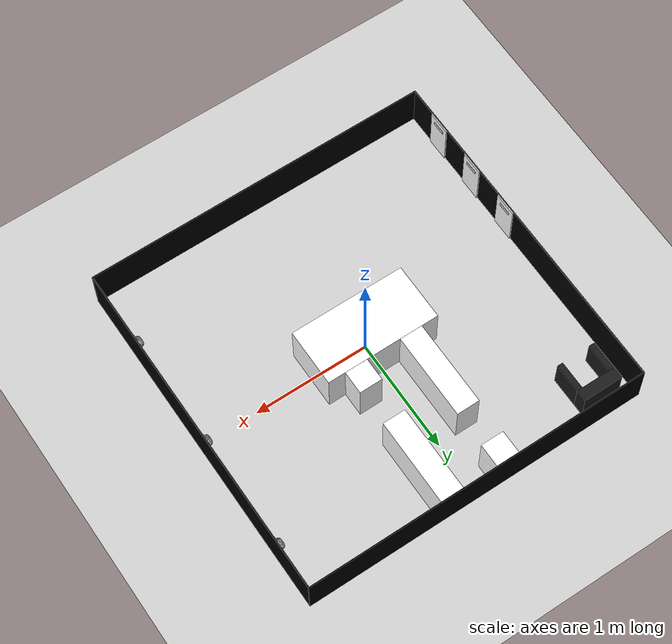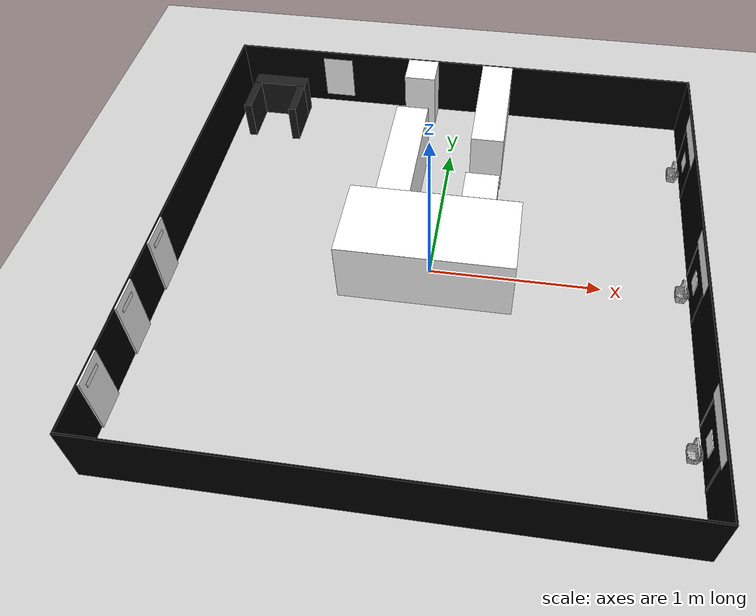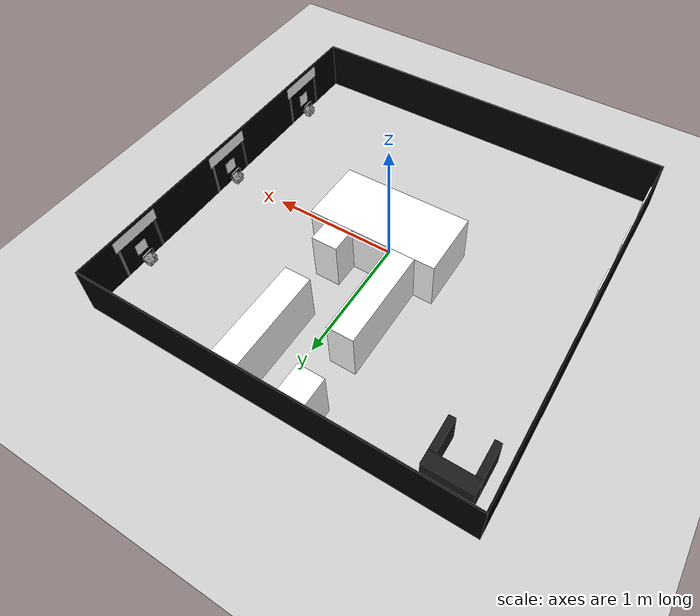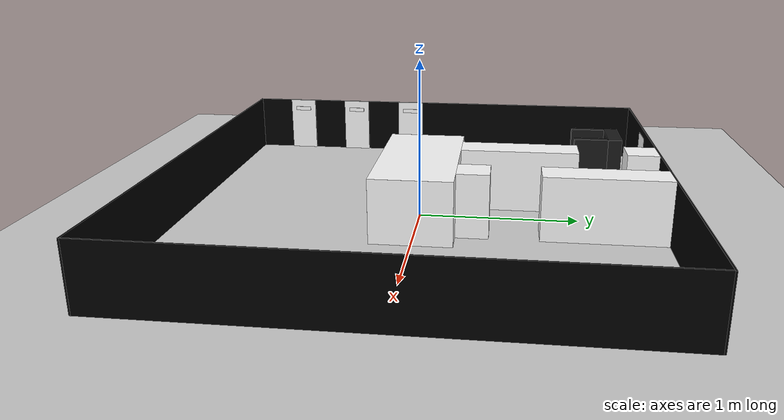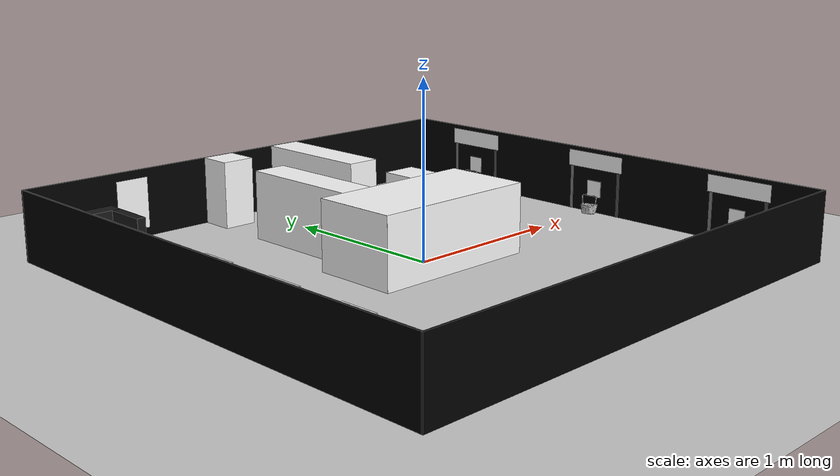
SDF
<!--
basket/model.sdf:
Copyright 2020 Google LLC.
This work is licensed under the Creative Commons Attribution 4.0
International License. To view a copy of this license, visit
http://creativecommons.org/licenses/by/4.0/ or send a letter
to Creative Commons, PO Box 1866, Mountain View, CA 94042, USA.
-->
<sdf version="1.8">
 <world name="default">
  <plugin filename="gz-sim-physics-system" name="gz::sim::systems::Physics"/>
  <plugin filename="gz-sim-user-commands-system" name="gz::sim::systems::UserCommands"/>
  <plugin filename="gz-sim-scene-broadcaster-system" name="gz::sim::systems::SceneBroadcaster"/>
  <plugin filename="gz-sim-sensors-system" name="gz::sim::systems::Sensors">
   <render_engine>ogre2</render_engine>
  </plugin>
  <plugin filename="gz-sim-imu-system" name="gz::sim::systems::Imu"/>
  <scene>
   <ambient>1 1 1 1</ambient>
   <shadows>0</shadows>
   <grid>1</grid>
   <background>0.7 0.7 0.7 1</background>
  </scene>
  <light type="directional" name="sun">
   <cast_shadows>0</cast_shadows>
   <pose>0 0 5 0 0 0</pose>
   <diffuse>0.9 0.9 0.9 1</diffuse>
   <specular>0.2 0.2 0.2 1</specular>
   <attenuation>
    <range>1000</range>
    <constant>0.9</constant>
    <linear>0.01</linear>
    <quadratic>0.001</quadratic>
   </attenuation>
   <direction>0.5 0.1 -0.9</direction>
  </light>
  <model name="turtlebot3_autorace_2025">
   <static>1</static>
   <include><uri>model://turtlebot3_autorace_2025/stadium</uri></include>
  </model>
  <include><uri>model://turtlebot3_autorace_2025/ground</uri></include>
  <include><pose>0 0.75 0 0 0 0</pose><uri>model://turtlebot3_autorace_2025/wall</uri></include>
  <include><pose>-1.225 1.225 0 0 0 0</pose><uri>model://turtlebot3_autorace_2025/charge_station</uri></include>
  <include><pose>1.5 0 0 0 0 0</pose><uri>model://turtlebot3_autorace_2025/pickup_desk</uri></include>
  <include><pose>-1.3 -1.5 0 0 0 0</pose><uri>model://turtlebot3_autorace_2025/place_zone</uri></include>
  <include><pose>-0.85 1.5 0 0 0 0</pose><uri>model://turtlebot3_autorace_2025/order_panel</uri></include>
  <model name="basket1">
   <include><pose>1.45 -1 0 0 0 1.57</pose><uri>model://turtlebot3_autorace_2025/basket</uri></include>
  </model>
  <model name="basket2">
   <include><pose>1.45 0 0 0 0 1.57</pose><uri>model://turtlebot3_autorace_2025/basket</uri></include>
  </model>
  <model name="basket3">
   <include><pose>1.45 1 0 0 0 1.57</pose><uri>model://turtlebot3_autorace_2025/basket</uri></include>
  </model>
  <physics type="ode">
   <real_time_update_rate>1000.0</real_time_update_rate>
   <max_step_size>0.001</max_step_size>
   <real_time_factor>1</real_time_factor>
   <ode>
    <solver>
     <type>quick</type>
     <iters>150</iters>
     <precon_iters>0</precon_iters>
     <sor>1.400000</sor>
     <use_dynamic_moi_rescaling>1</use_dynamic_moi_rescaling>
    </solver>
    <constraints>
     <cfm>0.00001</cfm>
     <erp>0.2</erp>
     <contact_max_correcting_vel>2000.000000</contact_max_correcting_vel>
     <contact_surface_layer>0.01000</contact_surface_layer>
    </constraints>
   </ode>
  </physics>
 </world>
</sdf>

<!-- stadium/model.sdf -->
<sdf version="1.8">
  <model name="stadium">
    <static>true</static>

    <link name="wall_right">
      <pose>0 -1.505 0.2 0 0 0</pose>
      <collision name="collision">
        <geometry>
          <box>
            <size>3.02 0.01 0.4</size>
          </box>
        </geometry>
      </collision>
      <visual name="visual">
        <geometry>
          <box>
            <size>3.02 0.01 0.4</size>
          </box>
        </geometry>
        <material>
          <ambient>0.0 0.0 0.0 1</ambient>
          <diffuse>0.0 0.0 0.0 1</diffuse>
        </material>
      </visual>
    </link>

    <link name="wall_left">
      <pose>0 1.505 0.2 0 0 0</pose>
      <collision name="collision">
        <geometry>
          <box>
            <size>3.02 0.01 0.4</size>
          </box>
        </geometry>
      </collision>
      <visual name="visual">
        <geometry>
          <box>
            <size>3.02 0.01 0.4</size>
          </box>
        </geometry>
        <material>
          <ambient>0.0 0.0 0.0 1</ambient>
          <diffuse>0.0 0.0 0.0 1</diffuse>
        </material>
      </visual>
    </link>

    <link name="wall_bottom">
      <pose>-1.505 0 0.2 0 0 0</pose>
      <collision name="collision">
        <geometry>
          <box>
            <size>0.01 3.0 0.4</size>
          </box>
        </geometry>
      </collision>
      <visual name="visual">
        <geometry>
          <box>
            <size>0.01 3.0 0.4</size>
          </box>
        </geometry>
        <material>
          <ambient>0.0 0.0 0.0 1</ambient>
          <diffuse>0.0 0.0 0.0 1</diffuse>
        </material>
      </visual>
    </link>

    <link name="wall_top">
      <pose>1.505 0 0.2 0 0 0</pose>
      <collision name="collision">
        <geometry>
          <box>
            <size>0.01 3.0 0.4</size>
          </box>
        </geometry>
      </collision>
      <visual name="visual">
        <geometry>
          <box>
            <size>0.01 3.0 0.4</size>
          </box>
        </geometry>
        <material>
          <ambient>0.0 0.0 0.0 1</ambient>
          <diffuse>0.0 0.0 0.0 1</diffuse>
        </material>
      </visual>
    </link>

    <link name="center_block">
      <pose>0 0 0.2 0 0 0</pose>
      <collision name="collision">
        <geometry>
          <box>
            <size>1.0 0.5 0.4</size>
          </box>
        </geometry>
      </collision>
      <visual name="up">
        <pose>0 0 0.19995 0 0 0</pose>
        <geometry>
          <box>
            <size>1 0.5 0.0001</size>
          </box>
        </geometry>
        <material>
            <pbr>
              <metal>
                <albedo_map>model://turtlebot3_autorace_2025/stadium/materials/textures/direction.png</albedo_map>
              </metal>
            </pbr>
            <ambient>1 1 1 1</ambient>
            <diffuse>1 1 1 1</diffuse>
            <specular>0.2 0.2 0.2 1</specular>
            <emissive>0 0 0 1</emissive>
        </material>
      </visual>
      <visual name="bottom">
        <pose>-0.49995 0 0 0 0 0</pose>
        <geometry>
          <box>
            <size>0.0001 0.5 0.4</size>
          </box>
        </geometry>
        <material>
            <pbr>
              <metal>
                <albedo_map>model://turtlebot3_autorace_2025/stadium/materials/textures/arrow.png</albedo_map>
              </metal>
            </pbr>
            <ambient>1 1 1 1</ambient>
            <diffuse>1 1 1 1</diffuse>
            <specular>0.2 0.2 0.2 1</specular>
            <emissive>0 0 0 1</emissive>
        </material>
      </visual>
      <visual name="top">
        <pose>0.49995 0 0 0 0 0</pose>
        <geometry>
          <box>
            <size>0.0001 0.5 0.4</size>
          </box>
        </geometry>
        <material>
            <pbr>
              <metal>
                <albedo_map>model://turtlebot3_autorace_2025/stadium/materials/textures/arrow.png</albedo_map>
              </metal>
            </pbr>
            <ambient>1 1 1 1</ambient>
            <diffuse>1 1 1 1</diffuse>
            <specular>0.2 0.2 0.2 1</specular>
            <emissive>0 0 0 1</emissive>
        </material>
      </visual>
      <visual name="left">
        <pose>0 0.24995 0 0 0 0</pose>
        <geometry>
          <box>
            <size>1 0.0001 0.4</size>
          </box>
        </geometry>
        <material>
            <pbr>
              <metal>
                <albedo_map>model://turtlebot3_autorace_2025/stadium/materials/textures/arrow.png</albedo_map>
              </metal>
            </pbr>
            <ambient>1 1 1 1</ambient>
            <diffuse>1 1 1 1</diffuse>
            <specular>0.2 0.2 0.2 1</specular>
            <emissive>0 0 0 1</emissive>
        </material>
      </visual>
      <visual name="right">
        <pose>0 -0.24995 0 0 0 0</pose>
        <geometry>
          <box>
            <size>1 0.0001 0.4</size>
          </box>
        </geometry>
        <material>
            <pbr>
              <metal>
                <albedo_map>model://turtlebot3_autorace_2025/stadium/materials/textures/arrow.png</albedo_map>
              </metal>
            </pbr>
            <ambient>1 1 1 1</ambient>
            <diffuse>1 1 1 1</diffuse>
            <specular>0.2 0.2 0.2 1</specular>
            <emissive>0 0 0 1</emissive>
        </material>
      </visual>
    </link>

  </model>
</sdf>

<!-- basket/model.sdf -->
<sdf version="1.6">
  <model name="RJ_Rabbit_Easter_Basket_Blue">
    <link name="link_0">
      <visual name="visual">
        <geometry>
          <mesh>
            <scale>0.5 0.5 0.5</scale>
            <uri>meshes/model.obj</uri>
          </mesh>
        </geometry>
      </visual>
      <collision name="collision_0">
        <geometry>
          <mesh>
            <scale>0.5 0.5 0.5</scale>
            <uri>meshes/model.obj</uri>
          </mesh>
        </geometry>
      </collision>
    </link>
  </model>
</sdf>

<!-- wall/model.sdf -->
<sdf version="1.8">
  <model name="wall">
    <static>true</static>
    <link name="obastacle_wall_1">
      <pose>-0.25 0.65 0.2 0 0 0</pose>
      <collision name="collision">
        <geometry>
          <box>
            <size>0.2 0.2 0.4</size>
          </box>
        </geometry>
      </collision>
      <visual name="visual">
        <geometry>
          <box>
            <size>0.2 0.2 0.4</size>
          </box>
        </geometry>
        <material>
            <pbr>
              <metal>
                <albedo_map>model://turtlebot3_autorace_2025/wall/materials/textures/bricks.png</albedo_map>
              </metal>
            </pbr>
            <ambient>1 1 1 1</ambient>
            <diffuse>1 1 1 1</diffuse>
            <specular>0.2 0.2 0.2 1</specular>
            <emissive>0 0 0 1</emissive>
        </material>
      </visual>
    </link>

    <link name="obstacle_wall_2">
      <pose>-0.25 -0.125 0.2 0 0 0</pose>
      <collision name="collision">
        <geometry>
          <box>
            <size>0.2 0.75 0.4</size>
          </box>
        </geometry>
      </collision>
      <visual name="visual">
        <geometry>
          <box>
            <size>0.2 0.75 0.4</size>
          </box>
        </geometry>
        <material>
            <pbr>
              <metal>
                <albedo_map>model://turtlebot3_autorace_2025/wall/materials/textures/bricks.png</albedo_map>
              </metal>
            </pbr>
            <ambient>1 1 1 1</ambient>
            <diffuse>1 1 1 1</diffuse>
            <specular>0.2 0.2 0.2 1</specular>
            <emissive>0 0 0 1</emissive>
        </material>
      </visual>
    </link>

    <link name="obstacle_wall_3">
      <pose>0.25 0.375 0.2 0 0 0</pose>
      <collision name="collision">
        <geometry>
          <box>
            <size>0.2 0.75 0.4</size>
          </box>
        </geometry>
      </collision>
      <visual name="visual">
        <geometry>
          <box>
            <size>0.2 0.75 0.4</size>
          </box>
        </geometry>
        <material>
            <pbr>
              <metal>
                <albedo_map>model://turtlebot3_autorace_2025/wall/materials/textures/bricks.png</albedo_map>
              </metal>
            </pbr>
            <ambient>1 1 1 1</ambient>
            <diffuse>1 1 1 1</diffuse>
            <specular>0.2 0.2 0.2 1</specular>
            <emissive>0 0 0 1</emissive>
        </material>
      </visual>
    </link>

    <link name="obastacle_wall_4">
      <pose>0.25 -0.4 0.2 0 0 0</pose>
      <collision name="collision">
        <geometry>
          <box>
            <size>0.2 0.2 0.4</size>
          </box>
        </geometry>
      </collision>
      <visual name="visual">
        <geometry>
          <box>
            <size>0.2 0.2 0.4</size>
          </box>
        </geometry>
        <material>
            <pbr>
              <metal>
                <albedo_map>model://turtlebot3_autorace_2025/wall/materials/textures/bricks.png</albedo_map>
              </metal>
            </pbr>
            <ambient>1 1 1 1</ambient>
            <diffuse>1 1 1 1</diffuse>
            <specular>0.2 0.2 0.2 1</specular>
            <emissive>0 0 0 1</emissive>
        </material>
      </visual>
    </link>

  </model>
</sdf>

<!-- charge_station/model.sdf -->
<sdf version="1.8">
  <model name="charge_station">
    <static>true</static>

    <link name="station_front">
      <pose>0 0.125 0.1 0 0 0</pose>
      <collision name="collision">
        <geometry>
          <box>
            <size>0.35 0.1 0.3</size>
          </box>
        </geometry>
      </collision>
      <visual name="visual">
        <geometry>
          <box>
            <size>0.35 0.1 0.3</size>
          </box>
        </geometry>
        <material>
          <ambient>0.1 0.1 0.1 0.9</ambient>
          <diffuse>0.1 0.1 0.1 0.9</diffuse>
        </material>
      </visual>
    </link>

    <link name="station_left">
      <pose>-0.15 -0.05 0.1 0 0 0</pose>
      <collision name="collision">
        <geometry>
          <box>
            <size>0.05 0.25 0.3</size>
          </box>
        </geometry>
      </collision>
      <visual name="visual">
        <geometry>
          <box>
            <size>0.05 0.25 0.3</size>
          </box>
        </geometry>
        <material>
          <ambient>0.1 0.1 0.1 0.9</ambient>
          <diffuse>0.1 0.1 0.1 0.9</diffuse>
        </material>
      </visual>
    </link>

    <link name="station_right">
      <pose>0.15 -0.05 0.1 0 0 0</pose>
      <collision name="collision">
        <geometry>
          <box>
            <size>0.05 0.25 0.3</size>
          </box>
        </geometry>
      </collision>
      <visual name="visual">
        <geometry>
          <box>
            <size>0.05 0.25 0.3</size>
          </box>
        </geometry>
        <material>
          <ambient>0.1 0.1 0.1 0.9</ambient>
          <diffuse>0.1 0.1 0.1 0.9</diffuse>
        </material>
      </visual>
    </link>

  </model>
</sdf>

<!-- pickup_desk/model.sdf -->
<sdf version="1.8">
  <model name="pickup_desk">
    <static>true</static>
    <link name="signboard_1">
      <pose>-0.0005 1 0.325 0 0 0</pose>
      <visual name="visual">
        <geometry>
          <box>
            <size>0.001 0.4 0.1</size>
          </box>
        </geometry>
        <material>
            <pbr>
              <metal>
                <albedo_map>model://turtlebot3_autorace_2025/pickup_desk/materials/textures/mcdonald.png</albedo_map>
              </metal>
            </pbr>
          <ambient>1 1 1 1</ambient>
          <diffuse>1 1 1 1</diffuse>
        </material>
      </visual>

      <visual name="visual_left_bar_1">
        <pose>0 0.175 -0.1875 0 0 0</pose>
        <geometry>
          <box>
            <size>0.001 0.02 0.275</size>
          </box>
        </geometry>
        <material>
          <ambient>0.5 0.5 0.5 1</ambient>
          <diffuse>0.5 0.5 0.5 1</diffuse>
        </material>
      </visual>

      <visual name="visual_right_bar_1">
        <pose>0 -0.175 -0.1875 0 0 0</pose>
        <geometry>
          <box>
            <size>0.001 0.02 0.275</size>
          </box>
        </geometry>
        <material>
          <ambient>0.3 0.3 0.3 1</ambient>
          <diffuse>0.3 0.3 0.3 1</diffuse>
        </material>
      </visual>
    </link>

    <link name="QR_1">
      <pose>-0.0005 1 0.15 0 0 0</pose>
      <visual name="visual">
        <geometry>
          <box>
            <size>0.001 0.1 0.1</size>
          </box>
        </geometry>
        <material>
            <pbr>
              <metal>
                <albedo_map>model://turtlebot3_autorace_2025/pickup_desk/materials/textures/marker0.png</albedo_map>
              </metal>
            </pbr>
          <ambient>1 1 1 1</ambient>
          <diffuse>1 1 1 1</diffuse>
        </material>
      </visual>
    </link>

    <link name="signboard_2">
      <pose>-0.0005 0 0.325 0 0 0</pose>
      <visual name="visual">
        <geometry>
          <box>
            <size>0.001 0.4 0.1</size>
          </box>
        </geometry>
        <material>
            <pbr>
              <metal>
                <albedo_map>model://turtlebot3_autorace_2025/pickup_desk/materials/textures/domino.png</albedo_map>
              </metal>
            </pbr>
          <ambient>1 1 1 1</ambient>
          <diffuse>1 1 1 1</diffuse>
        </material>
      </visual>

      <visual name="visual_left_bar_2">
        <pose>0 0.175 -0.1875 0 0 0</pose>
        <geometry>
          <box>
            <size>0.001 0.02 0.275</size>
          </box>
        </geometry>
        <material>
          <ambient>0.5 0.5 0.5 1</ambient>
          <diffuse>0.5 0.5 0.5 1</diffuse>
        </material>
      </visual>

      <visual name="visual_right_bar_2">
        <pose>0 -0.175 -0.1875 0 0 0</pose>
        <geometry>
          <box>
            <size>0.001 0.02 0.275</size>
          </box>
        </geometry>
        <material>
          <ambient>0.3 0.3 0.3 1</ambient>
          <diffuse>0.3 0.3 0.3 1</diffuse>
        </material>
      </visual>
    </link>

    <link name="QR_2">
      <pose>-0.0025 0 0.15 0 0 0</pose>
      <visual name="visual">
        <geometry>
          <box>
            <size>0.005 0.1 0.1</size>
          </box>
        </geometry>
        <material>
            <pbr>
              <metal>
                <albedo_map>model://turtlebot3_autorace_2025/pickup_desk/materials/textures/marker0.png</albedo_map>
              </metal>
            </pbr>
          <ambient>1 1 1 1</ambient>
          <diffuse>1 1 1 1</diffuse>
        </material>
      </visual>
    </link>

    <link name="signboard_3">
      <pose>-0.0005 -1 0.325 0 0 0</pose>
      <visual name="visual">
        <geometry>
          <box>
            <size>0.001 0.4 0.1</size>
          </box>
        </geometry>
        <material>
            <pbr>
              <metal>
                <albedo_map>model://turtlebot3_autorace_2025/pickup_desk/materials/textures/kfc.png</albedo_map>
              </metal>
            </pbr>
          <ambient>1 1 1 1</ambient>
          <diffuse>1 1 1 1</diffuse>
        </material>
      </visual>

      <visual name="visual_left_bar_3">
        <pose>0 0.175 -0.1875 0 0 0</pose>
        <geometry>
          <box>
            <size>0.001 0.02 0.275</size>
          </box>
        </geometry>
        <material>
          <ambient>0.5 0.5 0.5 1</ambient>
          <diffuse>0.5 0.5 0.5 1</diffuse>
        </material>
      </visual>

      <visual name="visual_right_bar_3">
        <pose>0 -0.175 -0.1875 0 0 0</pose>
        <geometry>
          <box>
            <size>0.001 0.02 0.275</size>
          </box>
        </geometry>
        <material>
          <ambient>0.3 0.3 0.3 1</ambient>
          <diffuse>0.3 0.3 0.3 1</diffuse>
        </material>
      </visual>
    </link>

    <link name="QR_3">
      <pose>-0.0025 -1 0.15 0 0 0</pose>
      <visual name="visual">
        <geometry>
          <box>
            <size>0.005 0.1 0.1</size>
          </box>
        </geometry>
        <material>
            <pbr>
              <metal>
                <albedo_map>model://turtlebot3_autorace_2025/pickup_desk/materials/textures/marker0.png</albedo_map>
              </metal>
            </pbr>
          <ambient>1 1 1 1</ambient>
          <diffuse>1 1 1 1</diffuse>
        </material>
      </visual>
    </link>
  </model>
</sdf>

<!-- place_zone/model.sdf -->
<sdf version="1.8">
  <model name="place_zone">
    <static>true</static>
    <link name="door_1">
      <pose>-0.195 1.25 0.2 0 0 0</pose>
      <collision name="collision">
        <geometry>
          <box>
            <size>0.01 0.2 0.4</size>
          </box>
        </geometry>
      </collision>
      <visual name="visual">
        <geometry>
          <box>
            <size>0.01 0.2 0.4</size>
          </box>
        </geometry>
        <material>
            <pbr>
              <metal>
                <albedo_map>model://turtlebot3_autorace_2025/place_zone/materials/textures/door.png</albedo_map>
              </metal>
            </pbr>
            <ambient>1 1 1 1</ambient>
            <diffuse>1 1 1 1</diffuse>
            <specular>0.2 0.2 0.2 1</specular>
            <emissive>0 0 0 1</emissive>
        </material>
      </visual>
    </link>

    <link name="panel_1">
      <pose>-0.19 1.25 0.33 0 0 0</pose>
      <visual name="visual">
        <geometry>
          <box>
            <size>0.005 0.12 0.03</size>
          </box>
        </geometry>
        <material>
            <pbr>
              <metal>
                <albedo_map>model://turtlebot3_autorace_2025/place_zone/materials/textures/103.png</albedo_map>
              </metal>
            </pbr>
            <ambient>1 1 1 1</ambient>
            <diffuse>1 1 1 1</diffuse>
            <specular>0.2 0.2 0.2 1</specular>
            <emissive>0 0 0 1</emissive>
        </material>
      </visual>
    </link>

    <link name="door_2">
      <pose>-0.195 0.8 0.2 0 0 0</pose>
      <collision name="collision">
        <geometry>
          <box>
            <size>0.01 0.2 0.4</size>
          </box>
        </geometry>
      </collision>
      <visual name="visual">
        <geometry>
          <box>
            <size>0.01 0.2 0.4</size>
          </box>
        </geometry>
        <material>
            <pbr>
              <metal>
                <albedo_map>model://turtlebot3_autorace_2025/place_zone/materials/textures/door.png</albedo_map>
              </metal>
            </pbr>
            <ambient>1 1 1 1</ambient>
            <diffuse>1 1 1 1</diffuse>
            <specular>0.2 0.2 0.2 1</specular>
            <emissive>0 0 0 1</emissive>
        </material>
      </visual>
    </link>

    <link name="panel_2">
      <pose>-0.19 0.8 0.33 0 0 0</pose>
      <visual name="visual">
        <geometry>
          <box>
            <size>0.005 0.12 0.03</size>
          </box>
        </geometry>
        <material>
            <pbr>
              <metal>
                <albedo_map>model://turtlebot3_autorace_2025/place_zone/materials/textures/102.png</albedo_map>
              </metal>
            </pbr>
            <ambient>1 1 1 1</ambient>
            <diffuse>1 1 1 1</diffuse>
            <specular>0.2 0.2 0.2 1</specular>
            <emissive>0 0 0 1</emissive>
        </material>
      </visual>
    </link>

    <link name="door_3">
      <pose>-0.195 0.35 0.2 0 0 0</pose>
      <collision name="collision">
        <geometry>
          <box>
            <size>0.01 0.2 0.4</size>
          </box>
        </geometry>
      </collision>
      <visual name="visual">
        <geometry>
          <box>
            <size>0.01 0.2 0.4</size>
          </box>
        </geometry>
        <material>
            <pbr>
              <metal>
                <albedo_map>model://turtlebot3_autorace_2025/place_zone/materials/textures/door.png</albedo_map>
              </metal>
            </pbr>
            <ambient>1 1 1 1</ambient>
            <diffuse>1 1 1 1</diffuse>
            <specular>0.2 0.2 0.2 1</specular>
            <emissive>0 0 0 1</emissive>
        </material>
      </visual>
    </link>

    <link name="panel_3">
      <pose>-0.19 0.35 0.33 0 0 0</pose>
      <visual name="visual">
        <geometry>
          <box>
            <size>0.005 0.12 0.03</size>
          </box>
        </geometry>
        <material>
            <pbr>
              <metal>
                <albedo_map>model://turtlebot3_autorace_2025/place_zone/materials/textures/101.png</albedo_map>
              </metal>
            </pbr>
            <ambient>1 1 1 1</ambient>
            <diffuse>1 1 1 1</diffuse>
            <specular>0.2 0.2 0.2 1</specular>
            <emissive>0 0 0 1</emissive>
        </material>
      </visual>
    </link>

  </model>
</sdf>

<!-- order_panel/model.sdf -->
<sdf version="1.8">
  <model name="order_panel">
    <static>true</static>

    <link name="panel">
      <pose>0 -0.0005 0.2 0 0 0</pose>
      <visual name="visual">
        <geometry>
          <box>
            <size>0.2 0.001 0.3</size>
          </box>
        </geometry>
        <material>
            <pbr>
              <metal>
                <albedo_map>model://turtlebot3_autorace_2025/order_panel/materials/textures/order_image.png</albedo_map>
              </metal>
            </pbr>
          <ambient>1 1 1 1</ambient>
          <diffuse>1 1 1 1</diffuse>
        </material>
      </visual>
    </link>

  </model>
</sdf>
